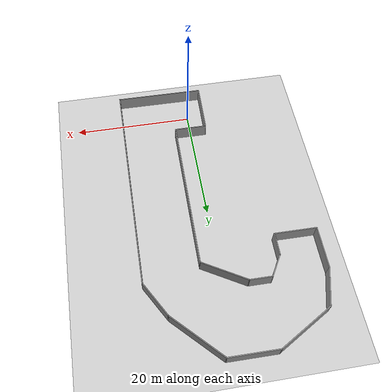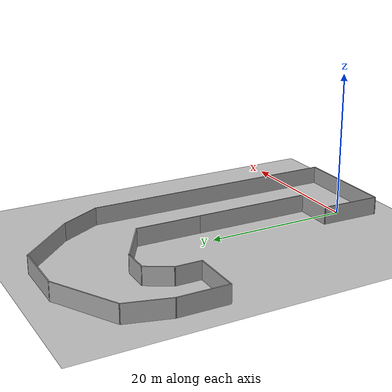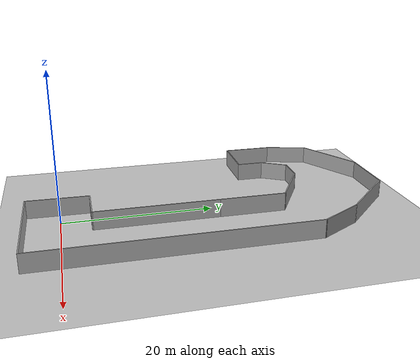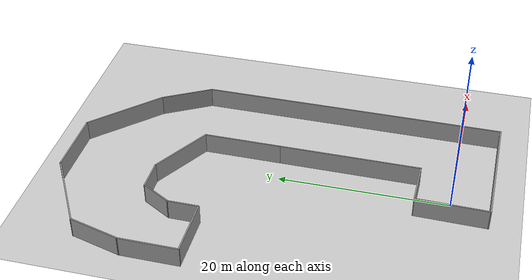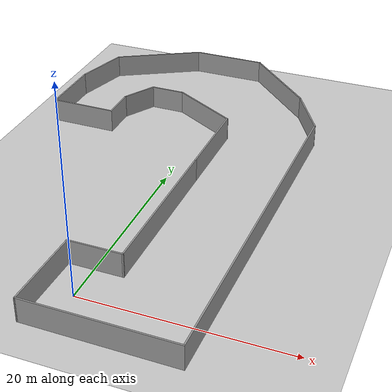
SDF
<sdf version="1.7">
 <world name="default">
  <light name="sun" type="directional">
   <pose>0 0 10 0 -0 0</pose>
   <diffuse>0.8 0.8 0.8 1</diffuse>
   <specular>0.2 0.2 0.2 1</specular>
   <attenuation>
    <range>1000</range>
    <constant>0.9</constant>
    <linear>0.01</linear>
    <quadratic>0.001</quadratic>
   </attenuation>
   <direction>-0.5 0.1 -0.9</direction>
   <spot><inner_angle>0</inner_angle><outer_angle>0</outer_angle><falloff>0</falloff></spot>
  </light>
  <model name="ground_plane">
   <static>1</static>
   <link name="link">
    <collision name="collision">
     <geometry><plane><normal>0 0 1</normal><size>100 100</size></plane></geometry>
     <surface>
      <contact><collide_bitmask>65535</collide_bitmask></contact>
      <friction><ode><mu>100</mu><mu2>50</mu2></ode></friction>
     </surface>
    </collision>
    <visual name="visual">
     <cast_shadows>0</cast_shadows>
     <geometry><plane><normal>0 0 1</normal><size>100 100</size></plane></geometry>
     <material>
      <script><uri>file://media/materials/scripts/gazebo.material</uri><name>Gazebo/Grey</name></script>
     </material>
    </visual>
   </link>
  </model>
  <gravity>0 0 -9.8</gravity>
  <magnetic_field>6e-06 2.3e-05 -4.2e-05</magnetic_field>
  <atmosphere type="adiabatic"/>
  <physics type="ode">
   <max_step_size>0.001</max_step_size>
   <real_time_factor>1</real_time_factor>
   <real_time_update_rate>1000</real_time_update_rate>
  </physics>
  <scene><ambient>0.4 0.4 0.4 1</ambient><background>0.7 0.7 0.7 1</background><shadows>1</shadows></scene>
  <audio><device>default</device></audio>
  <spherical_coordinates>
   <surface_model>EARTH_WGS84</surface_model>
   <latitude_deg>0</latitude_deg>
   <longitude_deg>0</longitude_deg>
   <elevation>0</elevation>
   <heading_deg>0</heading_deg>
  </spherical_coordinates>
  <model name="level1">
   <pose>-2.0918 19.9626 0 0 -0 1.56323</pose>
   <link name="Wall_63">
    <collision name="Wall_63_Collision">
     <geometry><box><size>14.75 0.15 2.5</size></box></geometry>
     <pose>0 0 1.25 0 -0 0</pose>
    </collision>
    <visual name="Wall_63_Visual">
     <pose>0 0 1.25 0 -0 0</pose>
     <geometry><box><size>14.75 0.15 2.5</size></box></geometry>
     <material>
      <script><uri>file://media/materials/scripts/gazebo.material</uri><name>Gazebo/Grey</name></script>
      <ambient>1 1 1 1</ambient>
     </material>
     <meta><layer>0</layer></meta>
    </visual>
    <pose>-24.3854 -6.83266 0 0 -0 -1.5708</pose>
   </link>
   <link name="Wall_64">
    <collision name="Wall_64_Collision">
     <geometry><box><size>36.25 0.15 2.5</size></box></geometry>
     <pose>0 0 1.25 0 -0 0</pose>
    </collision>
    <visual name="Wall_64_Visual">
     <pose>0 0 1.25 0 -0 0</pose>
     <geometry><box><size>36.25 0.15 2.5</size></box></geometry>
     <material>
      <script><uri>file://media/materials/scripts/gazebo.material</uri><name>Gazebo/Grey</name></script>
      <ambient>1 1 1 1</ambient>
     </material>
     <meta><layer>0</layer></meta>
    </visual>
    <pose>-6.3354 -14.1327 0 0 -0 0</pose>
   </link>
   <link name="Wall_65">
    <collision name="Wall_65_Collision">
     <geometry><box><size>6.5 0.15 2.5</size></box></geometry>
     <pose>0 0 1.25 0 -0 0</pose>
    </collision>
    <visual name="Wall_65_Visual">
     <pose>0 0 1.25 0 -0 0</pose>
     <geometry><box><size>6.5 0.15 2.5</size></box></geometry>
     <material>
      <script><uri>file://media/materials/scripts/gazebo.material</uri><name>Gazebo/Grey</name></script>
      <ambient>1 1 1 1</ambient>
     </material>
     <meta><layer>0</layer></meta>
    </visual>
    <pose>14.4642 -12.5452 0 0 -0 0.523599</pose>
   </link>
   <link name="Wall_66">
    <collision name="Wall_66_Collision">
     <geometry><box><size>10.25 0.15 2.5</size></box></geometry>
     <pose>0 0 1.25 0 -0 0</pose>
    </collision>
    <visual name="Wall_66_Visual">
     <pose>0 0 1.25 0 -0 0</pose>
     <geometry><box><size>10.25 0.15 2.5</size></box></geometry>
     <material>
      <script><uri>file://media/materials/scripts/gazebo.material</uri><name>Gazebo/Grey</name></script>
      <ambient>1 1 1 1</ambient>
     </material>
     <meta><layer>0</layer></meta>
    </visual>
    <pose>20.7848 -7.38678 0 0 -0 0.785398</pose>
   </link>
   <link name="Wall_67">
    <collision name="Wall_67_Collision">
     <geometry><box><size>8 0.15 2.5</size></box></geometry>
     <pose>0 0 1.25 0 -0 0</pose>
    </collision>
    <visual name="Wall_67_Visual">
     <pose>0 0 1.25 0 -0 0</pose>
     <geometry><box><size>8 0.15 2.5</size></box></geometry>
     <material>
      <script><uri>file://media/materials/scripts/gazebo.material</uri><name>Gazebo/Grey</name></script>
      <ambient>1 1 1 1</ambient>
     </material>
     <meta><layer>0</layer></meta>
    </visual>
    <pose>24.3556 0.109114 0 0 -0 1.5708</pose>
   </link>
   <link name="Wall_68">
    <collision name="Wall_68_Collision">
     <geometry><box><size>10 0.15 2.5</size></box></geometry>
     <pose>0 0 1.25 0 -0 0</pose>
    </collision>
    <visual name="Wall_68_Visual">
     <pose>0 0 1.25 0 -0 0</pose>
     <geometry><box><size>10 0.15 2.5</size></box></geometry>
     <material>
      <script><uri>file://media/materials/scripts/gazebo.material</uri><name>Gazebo/Grey</name></script>
      <ambient>1 1 1 1</ambient>
     </material>
     <meta><layer>0</layer></meta>
    </visual>
    <pose>21.8931 8.29929 0 0 -0 2.0944</pose>
   </link>
   <link name="Wall_69">
    <collision name="Wall_69_Collision">
     <geometry><box><size>6.25 0.15 2.5</size></box></geometry>
     <pose>0 0 1.25 0 -0 0</pose>
    </collision>
    <visual name="Wall_69_Visual">
     <pose>0 0 1.25 0 -0 0</pose>
     <geometry><box><size>6.25 0.15 2.5</size></box></geometry>
     <material>
      <script><uri>file://media/materials/scripts/gazebo.material</uri><name>Gazebo/Grey</name></script>
      <ambient>1 1 1 1</ambient>
     </material>
     <meta><layer>0</layer></meta>
    </visual>
    <pose>16.4846 13.3539 0 0 -0 2.87979</pose>
   </link>
   <link name="Wall_70">
    <collision name="Wall_70_Collision">
     <geometry><box><size>7 0.15 2.5</size></box></geometry>
     <pose>0 0 1.25 0 -0 0</pose>
    </collision>
    <visual name="Wall_70_Visual">
     <pose>0 0 1.25 0 -0 0</pose>
     <geometry><box><size>7 0.15 2.5</size></box></geometry>
     <material>
      <script><uri>file://media/materials/scripts/gazebo.material</uri><name>Gazebo/Grey</name></script>
      <ambient>1 1 1 1</ambient>
     </material>
     <meta><layer>0</layer></meta>
    </visual>
    <pose>10.1135 14.1433 0 0 -0 3.14159</pose>
   </link>
   <link name="Wall_71">
    <collision name="Wall_71_Collision">
     <geometry><box><size>7 0.15 2.5</size></box></geometry>
     <pose>0 0 1.25 0 -0 0</pose>
    </collision>
    <visual name="Wall_71_Visual">
     <pose>0 0 1.25 0 -0 0</pose>
     <geometry><box><size>7 0.15 2.5</size></box></geometry>
     <material>
      <script><uri>file://media/materials/scripts/gazebo.material</uri><name>Gazebo/Grey</name></script>
      <ambient>1 1 1 1</ambient>
     </material>
     <meta><layer>0</layer></meta>
    </visual>
    <pose>6.68849 10.7183 0 0 -0 -1.5708</pose>
   </link>
   <link name="Wall_72">
    <collision name="Wall_72_Collision">
     <geometry><box><size>3.75 0.15 2.5</size></box></geometry>
     <pose>0 0 1.25 0 -0 0</pose>
    </collision>
    <visual name="Wall_72_Visual">
     <pose>0 0 1.25 0 -0 0</pose>
     <geometry><box><size>3.75 0.15 2.5</size></box></geometry>
     <material>
      <script><uri>file://media/materials/scripts/gazebo.material</uri><name>Gazebo/Grey</name></script>
      <ambient>1 1 1 1</ambient>
     </material>
     <meta><layer>0</layer></meta>
    </visual>
    <pose>8.48849 7.29326 0 0 -0 0</pose>
   </link>
   <link name="Wall_73">
    <collision name="Wall_73_Collision">
     <geometry><box><size>4 0.15 2.5</size></box></geometry>
     <pose>0 0 1.25 0 -0 0</pose>
    </collision>
    <visual name="Wall_73_Visual">
     <pose>0 0 1.25 0 -0 0</pose>
     <geometry><box><size>4 0.15 2.5</size></box></geometry>
     <material>
      <script><uri>file://media/materials/scripts/gazebo.material</uri><name>Gazebo/Grey</name></script>
      <ambient>1 1 1 1</ambient>
     </material>
     <meta><layer>0</layer></meta>
    </visual>
    <pose>11.9556 6.33076 0 0 -0 -0.523599</pose>
   </link>
   <link name="Wall_74">
    <collision name="Wall_74_Collision">
     <geometry><box><size>3.75 0.15 2.5</size></box></geometry>
     <pose>0 0 1.25 0 -0 0</pose>
    </collision>
    <visual name="Wall_74_Visual">
     <pose>0 0 1.25 0 -0 0</pose>
     <geometry><box><size>3.75 0.15 2.5</size></box></geometry>
     <material>
      <script><uri>file://media/materials/scripts/gazebo.material</uri><name>Gazebo/Grey</name></script>
      <ambient>1 1 1 1</ambient>
     </material>
     <meta><layer>0</layer></meta>
    </visual>
    <pose>13.6227 3.56826 0 0 -0 -1.5708</pose>
   </link>
   <link name="Wall_75">
    <collision name="Wall_75_Collision">
     <geometry><box><size>8 0.15 2.5</size></box></geometry>
     <pose>0 0 1.25 0 -0 0</pose>
    </collision>
    <visual name="Wall_75_Visual">
     <pose>0 0 1.25 0 -0 0</pose>
     <geometry><box><size>8 0.15 2.5</size></box></geometry>
     <material>
      <script><uri>file://media/materials/scripts/gazebo.material</uri><name>Gazebo/Grey</name></script>
      <ambient>1 1 1 1</ambient>
     </material>
     <meta><layer>0</layer></meta>
    </visual>
    <pose>11.6602 -1.63089 0 0 -0 -2.0944</pose>
   </link>
   <link name="Wall_76">
    <collision name="Wall_76_Collision">
     <geometry><box><size>9.25 0.15 2.5</size></box></geometry>
     <pose>0 0 1.25 0 -0 0</pose>
    </collision>
    <visual name="Wall_76_Visual">
     <pose>0 0 1.25 0 -0 0</pose>
     <geometry><box><size>9.25 0.15 2.5</size></box></geometry>
     <material>
      <script><uri>file://media/materials/scripts/gazebo.material</uri><name>Gazebo/Grey</name></script>
      <ambient>1 1 1 1</ambient>
     </material>
     <meta><layer>0</layer></meta>
    </visual>
    <pose>5.14769 -5.03004 0 0 -0 3.14159</pose>
   </link>
   <link name="Wall_77">
    <collision name="Wall_77_Collision">
     <geometry><box><size>16.75 0.15 2.5</size></box></geometry>
     <pose>0 0 1.25 0 -0 0</pose>
    </collision>
    <visual name="Wall_77_Visual">
     <pose>0 0 1.25 0 -0 0</pose>
     <geometry><box><size>16.75 0.15 2.5</size></box></geometry>
     <material>
      <script><uri>file://media/materials/scripts/gazebo.material</uri><name>Gazebo/Grey</name></script>
      <ambient>1 1 1 1</ambient>
     </material>
     <meta><layer>0</layer></meta>
    </visual>
    <pose>-7.70231 -5.03004 0 0 -0 3.14159</pose>
   </link>
   <link name="Wall_78">
    <collision name="Wall_78_Collision">
     <geometry><box><size>5.5 0.15 2.5</size></box></geometry>
     <pose>0 0 1.25 0 -0 0</pose>
    </collision>
    <visual name="Wall_78_Visual">
     <pose>0 0 1.25 0 -0 0</pose>
     <geometry><box><size>5.5 0.15 2.5</size></box></geometry>
     <material>
      <script><uri>file://media/materials/scripts/gazebo.material</uri><name>Gazebo/Grey</name></script>
      <ambient>1 1 1 1</ambient>
     </material>
     <meta><layer>0</layer></meta>
    </visual>
    <pose>-16.0023 -2.35504 0 0 -0 1.5708</pose>
   </link>
   <link name="Wall_79">
    <collision name="Wall_79_Collision">
     <geometry><box><size>8.53439 0.15 2.5</size></box></geometry>
     <pose>0 0 1.25 0 -0 0</pose>
    </collision>
    <visual name="Wall_79_Visual">
     <pose>0 0 1.25 0 -0 0</pose>
     <geometry><box><size>8.53439 0.15 2.5</size></box></geometry>
     <material>
      <script><uri>file://media/materials/scripts/gazebo.material</uri><name>Gazebo/Grey</name></script>
      <ambient>1 1 1 1</ambient>
     </material>
     <meta><layer>0</layer></meta>
    </visual>
    <pose>-20.1939 0.393648 0 0 -0 3.12401</pose>
   </link>
   <static>1</static>
  </model>
 </world>
</sdf>
